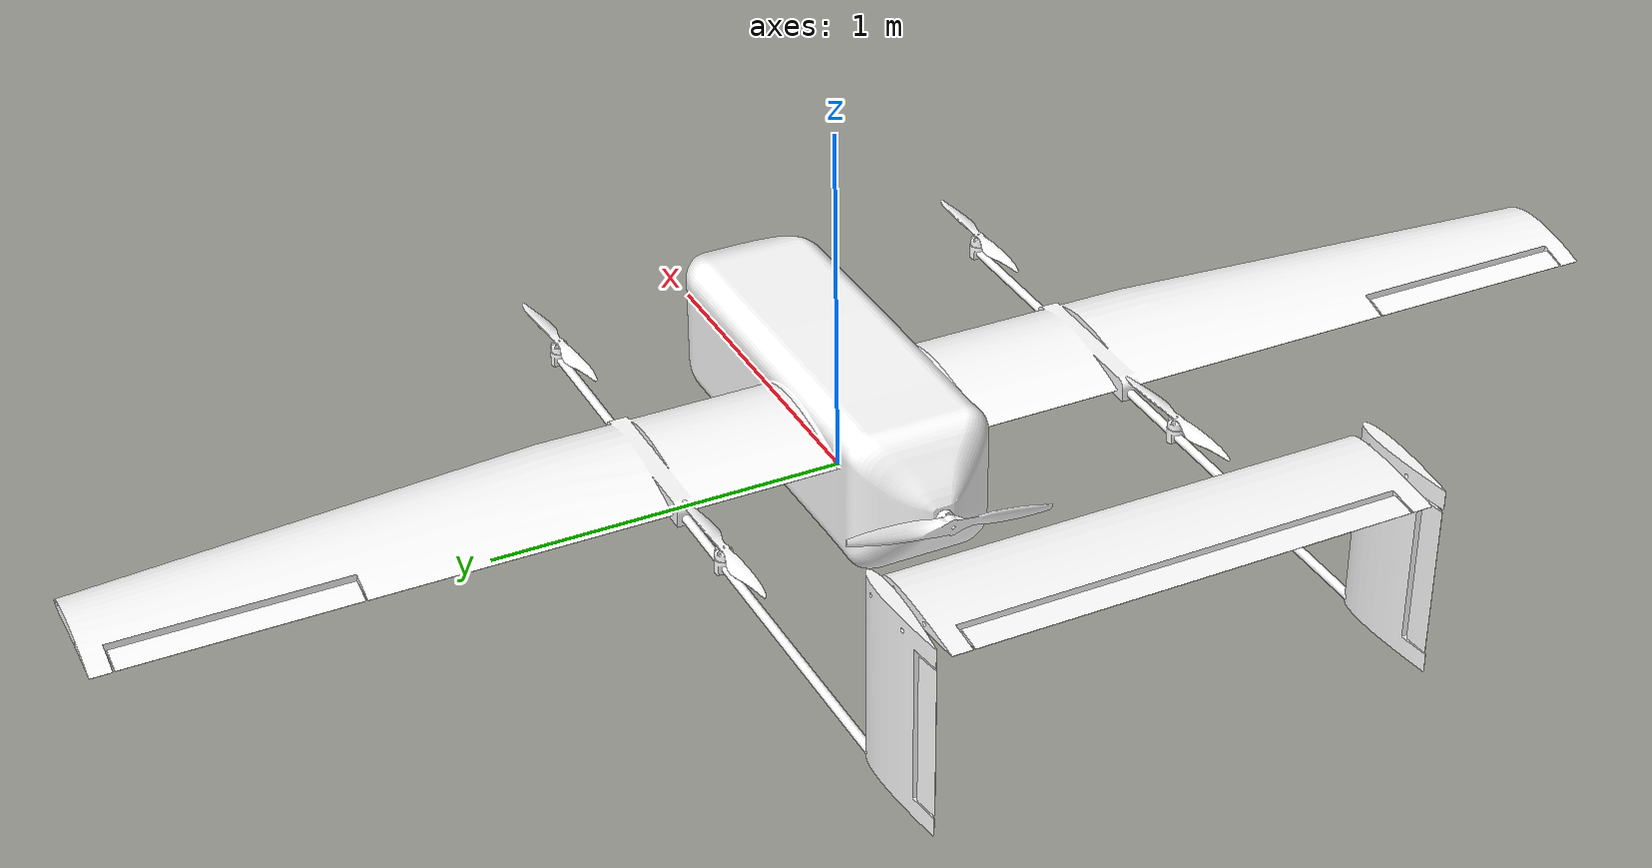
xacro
<?xml version="1.0" encoding="utf-8"?>

<robot
    name="ciconia" xmlns:xacro="http://www.ros.org/wiki/xacro">

  <xacro:include filename="$(find ciconia_gazebo)/urdf/ciconia.gazebo"/>

    <link
    name="body">
    <inertial>
      <origin
        xyz="-0.14 0.0 0.0"
        rpy="0 0 0" />
      <mass
        value="25" />
      <inertia
        ixx="8.638"
        ixy="0.0"
        ixz="1.3"
        iyy="9.014"
        iyz="0"
        izz="16.738" />
    </inertial>
    <visual>
      <origin
        xyz="0 0 0"
        rpy="0 0 0" />
      <geometry>
        <mesh
          filename="package://ciconia_gazebo/meshes/body.STL" />
      </geometry>
      <material
        name="">
        <color
          rgba="1 1 1 1" />
      </material>
    </visual>
    <collision>
      <origin
        xyz="0 0 0"
        rpy="0 0 0" />
      <geometry>
        <mesh
          filename="package://ciconia_gazebo/meshes/body.STL" />
      </geometry>
    </collision>
  </link>

  <link
    name="wing">
    <inertial>
      <origin
        xyz="-0.025 0.00011537 0.30483"
        rpy="0 0 0" />
      <mass
        value="0.0001" />
      <inertia
        ixx="0.0001"
        ixy="0.0001"
        ixz="0.0001"
        iyy="0.0001"
        iyz="-0.0001"
        izz="0.0001" />
    </inertial>
    <visual>
      <origin
        xyz="0 0 0"
        rpy="0 0 0" />
      <geometry>
        <mesh
          filename="package://ciconia_gazebo/meshes/wing.STL" />
      </geometry>
      <material
        name="">
        <color
          rgba="1 1 1 1" />
      </material>
    </visual>
    <collision>
      <origin
        xyz="0 0 0"
        rpy="0 0 0" />
      <geometry>
        <mesh
          filename="package://ciconia_gazebo/meshes/wing.STL" />
      </geometry>
    </collision>
  </link>

  <joint
    name="body2wing"
    type="fixed">
    <origin
      xyz="-0.42417 -2.11 0.30002"
      rpy="1.5708 0.034907 -3.1416" />
    <parent
      link="body" />
    <child
      link="wing" />
    <axis
      xyz="0 0 0" />
  </joint>

  <link
    name="aileronR">
    <inertial>
      <origin
        xyz="-0.025 0.00011537 0.30483"
        rpy="0 0 0" />
      <mass
        value="0.0001" />
      <inertia
        ixx="0.0001"
        ixy="0.0001"
        ixz="0.0001"
        iyy="0.0001"
        iyz="-0.0001"
        izz="0.0001" />
    </inertial>
    <visual>
      <origin
        xyz="0 0 0"
        rpy="0 0 0" />
      <geometry>
        <mesh
          filename="package://ciconia_gazebo/meshes/aileronR.STL" />
      </geometry>
      <material
        name="">
        <color
          rgba="1 1 1 1" />
      </material>
    </visual>
    <collision>
      <origin
        xyz="0 0 0"
        rpy="0 0 0" />
      <geometry>
        <mesh
          filename="package://ciconia_gazebo/meshes/aileronR.STL" />
      </geometry>
    </collision>
  </link>

  <joint
    name="wing2aileronR"
    type="revolute">
    <origin
      xyz="-0.06 0.00986 0.06"
      rpy="0 0 0.020949" />
    <parent
      link="wing" />
    <child
      link="aileronR" />
    <axis
      xyz="0 0 -1" />
    <limit
      lower="-0.5236"
      upper="0.5236"
      effort="100000"
      velocity="100000" />
    <dynamics
      damping="0.001"
      friction="0.001" />
  </joint>

  <link
    name="aileronL">
    <inertial>
      <origin
        xyz="-0.025 0.00011537 0.30483"
        rpy="0 0 0" />
      <mass
        value="0.0001" />
      <inertia
        ixx="0.0001"
        ixy="0.0001"
        ixz="0.0001"
        iyy="0.0001"
        iyz="-0.0001"
        izz="0.0001" />
    </inertial>
    <visual>
      <origin
        xyz="0 0 0"
        rpy="0 0 0" />
      <geometry>
        <mesh
          filename="package://ciconia_gazebo/meshes/aileronL.STL" />
      </geometry>
      <material
        name="">
        <color
          rgba="1 1 1 1" />
      </material>
    </visual>
    <collision>
      <origin
        xyz="0 0 0"
        rpy="0 0 0" />
      <geometry>
        <mesh
          filename="package://ciconia_gazebo/meshes/aileronL.STL" />
      </geometry>
    </collision>
  </link>

  <joint
    name="wing2aileronL"
    type="revolute">
    <origin
      xyz="-0.06 0.00986 3.56"
      rpy="0 0 0.024767" />
    <parent
      link="wing" />
    <child
      link="aileronL" />
    <axis
      xyz="0 0 -1" />
    <limit
      lower="-0.5236"
      upper="0.5236"
      effort="100000"
      velocity="100000" />
    <dynamics
      damping="0.001"
      friction="0.001" />
  </joint>

  <link
    name="frame">
    <inertial>
      <origin
        xyz="-0.025 0.00011537 0.30483"
        rpy="0 0 0" />
      <mass
        value="0.0001" />
      <inertia
        ixx="0.0001"
        ixy="0.0001"
        ixz="0.0001"
        iyy="0.0001"
        iyz="-0.0001"
        izz="0.0001" />
    </inertial>
    <visual>
      <origin
        xyz="0 0 0"
        rpy="0 0 0" />
      <geometry>
        <mesh
          filename="package://ciconia_gazebo/meshes/frame.STL" />
      </geometry>
      <material
        name="">
        <color
          rgba="1 1 1 1" />
      </material>
    </visual>
    <collision>
      <origin
        xyz="0 0 0"
        rpy="0 0 0" />
      <geometry>
        <mesh
          filename="package://ciconia_gazebo/meshes/frame.STL" />
      </geometry>
    </collision>
  </link>

  <joint
    name="wing2frame"
    type="fixed">
    <origin
      xyz="7.576E-05 -0.0021695 1.475"
      rpy="-1.5708 -1.4444 1.6057" />
    <parent
      link="wing" />
    <child
      link="frame" />
    <axis
      xyz="0 0 0" />
  </joint>

  <link
    name="dcmotorFL">
    <inertial>
      <origin
        xyz="-0.025 0.00011537 0.30483"
        rpy="0 0 0" />
      <mass
        value="0.0001" />
      <inertia
        ixx="0.0001"
        ixy="0.0001"
        ixz="0.0001"
        iyy="0.0001"
        iyz="-0.0001"
        izz="0.0001" />
    </inertial>
    <visual>
      <origin
        xyz="0 0 0"
        rpy="0 0 0" />
      <geometry>
        <mesh
          filename="package://ciconia_gazebo/meshes/dcmotorFL.STL" />
      </geometry>
      <material
        name="">
        <color
          rgba="1 1 1 1" />
      </material>
    </visual>
    <collision>
      <origin
        xyz="0 0 0"
        rpy="0 0 0" />
      <geometry>
        <mesh
          filename="package://ciconia_gazebo/meshes/dcmotorFL.STL" />
      </geometry>
    </collision>
  </link>

  <joint
    name="frame2dcmotorFL"
    type="fixed">
    <origin
      xyz="1.2619 -0.14378 0.81198"
      rpy="3.1416 0.14556 3.0152" />
    <parent
      link="frame" />
    <child
      link="dcmotorFL" />
    <axis
      xyz="0 0 0" />
  </joint>

  <link
    name="propFL">
    <inertial>
      <origin
        xyz="-0.025 0.00011537 0.30483"
        rpy="0 0 0" />
      <mass
        value="0.0001" />
      <inertia
        ixx="0.0001"
        ixy="0.0001"
        ixz="0.0001"
        iyy="0.0001"
        iyz="-0.0001"
        izz="0.0001" />
    </inertial>
    <visual>
      <origin
        xyz="0 0 0"
        rpy="0 0 0" />
      <geometry>
        <mesh
          filename="package://ciconia_gazebo/meshes/propFL.STL" />
      </geometry>
      <material
        name="">
        <color
          rgba="1 1 1 1" />
      </material>
    </visual>
    <collision>
      <origin
        xyz="0 0 0"
        rpy="0 0 0" />
      <geometry>
        <mesh
          filename="package://ciconia_gazebo/meshes/propFL.STL" />
      </geometry>
    </collision>
  </link>
  <joint
    name="dcmotorFL2propFL"
    type="continuous">
    <origin
      xyz="0 0.01 0"
      rpy="1.5708 -1.3555 0" />
    <parent
      link="dcmotorFL" />
    <child
      link="propFL" />
    <axis
      xyz="0 0 1" />
    <dynamics
      damping="0.0"
      friction="0.0" />
  </joint>
  <link
    name="dcmotorFR">
    <inertial>
      <origin
        xyz="-0.025 0.00011537 0.30483"
        rpy="0 0 0" />
      <mass
        value="0.0001" />
      <inertia
        ixx="0.0001"
        ixy="0.0001"
        ixz="0.0001"
        iyy="0.0001"
        iyz="-0.0001"
        izz="0.0001" />
    </inertial>
    <visual>
      <origin
        xyz="0 0 0"
        rpy="0 0 0" />
      <geometry>
        <mesh
          filename="package://ciconia_gazebo/meshes/dcmotorFR.STL" />
      </geometry>
      <material
        name="">
        <color
          rgba="1 1 1 1" />
      </material>
    </visual>
    <collision>
      <origin
        xyz="0 0 0"
        rpy="0 0 0" />
      <geometry>
        <mesh
          filename="package://ciconia_gazebo/meshes/dcmotorFR.STL" />
      </geometry>
    </collision>
  </link>
  <joint
    name="frame2dcmotorFR"
    type="fixed">
    <origin
      xyz="0.0020668 0.016269 0.81198"
      rpy="3.1416 1.501 3.0152" />
    <parent
      link="frame" />
    <child
      link="dcmotorFR" />
    <axis
      xyz="0 0 0" />
  </joint>
  <link
    name="propFR">
    <inertial>
      <origin
        xyz="-0.025 0.00011537 0.30483"
        rpy="0 0 0" />
      <mass
        value="0.0001" />
      <inertia
        ixx="0.0001"
        ixy="0.0001"
        ixz="0.0001"
        iyy="0.0001"
        iyz="-0.0001"
        izz="0.0001" />
    </inertial>
    <visual>
      <origin
        xyz="0 0 0"
        rpy="0 0 0" />
      <geometry>
        <mesh
          filename="package://ciconia_gazebo/meshes/propFR.STL" />
      </geometry>
      <material
        name="">
        <color
          rgba="1 1 1 1" />
      </material>
    </visual>
    <collision>
      <origin
        xyz="0 0 0"
        rpy="0 0 0" />
      <geometry>
        <mesh
          filename="package://ciconia_gazebo/meshes/propFR.STL" />
      </geometry>
    </collision>
  </link>
  <joint
    name="dcmotorFR2propFR"
    type="continuous">
    <origin
      xyz="0 0.01 0"
      rpy="1.5708 -0.068476 0" />
    <parent
      link="dcmotorFR" />
    <child
      link="propFR" />
    <axis
      xyz="0 0 1" />
    <dynamics
      damping="0.0"
      friction="0.0" />
  </joint>
  <link
    name="dcmotorBL">
    <inertial>
      <origin
        xyz="-0.025 0.00011537 0.30483"
        rpy="0 0 0" />
      <mass
        value="0.0001" />
      <inertia
        ixx="0.0001"
        ixy="0.0001"
        ixz="0.0001"
        iyy="0.0001"
        iyz="-0.0001"
        izz="0.0001" />
    </inertial>
    <visual>
      <origin
        xyz="0 0 0"
        rpy="0 0 0" />
      <geometry>
        <mesh
          filename="package://ciconia_gazebo/meshes/dcmotorBL.STL" />
      </geometry>
      <material
        name="">
        <color
          rgba="1 1 1 1" />
      </material>
    </visual>
    <collision>
      <origin
        xyz="0 0 0"
        rpy="0 0 0" />
      <geometry>
        <mesh
          filename="package://ciconia_gazebo/meshes/dcmotorBL.STL" />
      </geometry>
    </collision>
  </link>
  <joint
    name="frame2dcmotorBL"
    type="fixed">
    <origin
      xyz="1.2619 -0.14378 -0.24802"
      rpy="3.1416 1.501 3.0152" />
    <parent
      link="frame" />
    <child
      link="dcmotorBL" />
    <axis
      xyz="0 0 0" />
  </joint>
  <link
    name="propBL">
    <inertial>
      <origin
        xyz="-0.025 0.00011537 0.30483"
        rpy="0 0 0" />
      <mass
        value="0.0001" />
      <inertia
        ixx="0.0001"
        ixy="0.0001"
        ixz="0.0001"
        iyy="0.0001"
        iyz="-0.0001"
        izz="0.0001" />
    </inertial>
    <visual>
      <origin
        xyz="0 0 0"
        rpy="0 0 0" />
      <geometry>
        <mesh
          filename="package://ciconia_gazebo/meshes/propBL.STL" />
      </geometry>
      <material
        name="">
        <color
          rgba="1 1 1 1" />
      </material>
    </visual>
    <collision>
      <origin
        xyz="0 0 0"
        rpy="0 0 0" />
      <geometry>
        <mesh
          filename="package://ciconia_gazebo/meshes/propBL.STL" />
      </geometry>
    </collision>
  </link>
  <joint
    name="dcmotorBL2propBL"
    type="continuous">
    <origin
      xyz="0 0.01 0"
      rpy="1.5708 -0.042043 0" />
    <parent
      link="dcmotorBL" />
    <child
      link="propBL" />
    <axis
      xyz="0 0 1" />
    <dynamics
      damping="0.0"
      friction="0.0" />
  </joint>
  <link
    name="dcmotorBR">
    <inertial>
      <origin
        xyz="-0.025 0.00011537 0.30483"
        rpy="0 0 0" />
      <mass
        value="0.0001" />
      <inertia
        ixx="0.0001"
        ixy="0.0001"
        ixz="0.0001"
        iyy="0.0001"
        iyz="-0.0001"
        izz="0.0001" />
    </inertial>
    <visual>
      <origin
        xyz="0 0 0"
        rpy="0 0 0" />
      <geometry>
        <mesh
          filename="package://ciconia_gazebo/meshes/dcmotorBR.STL" />
      </geometry>
      <material
        name="">
        <color
          rgba="1 1 1 1" />
      </material>
    </visual>
    <collision>
      <origin
        xyz="0 0 0"
        rpy="0 0 0" />
      <geometry>
        <mesh
          filename="package://ciconia_gazebo/meshes/dcmotorBR.STL" />
      </geometry>
    </collision>
  </link>
  <joint
    name="frame2dcmotorBR"
    type="fixed">
    <origin
      xyz="0.0020668 0.016269 -0.24802"
      rpy="3.1416 1.501 3.0152" />
    <parent
      link="frame" />
    <child
      link="dcmotorBR" />
    <axis
      xyz="0 0 0" />
  </joint>
  <link
    name="propBR">
    <inertial>
      <origin
        xyz="-0.025 0.00011537 0.30483"
        rpy="0 0 0" />
      <mass
        value="0.0001" />
      <inertia
        ixx="0.0001"
        ixy="0.0001"
        ixz="0.0001"
        iyy="0.0001"
        iyz="-0.0001"
        izz="0.0001" />
    </inertial>
    <visual>
      <origin
        xyz="0 0 0"
        rpy="0 0 0" />
      <geometry>
        <mesh
          filename="package://ciconia_gazebo/meshes/propBR.STL" />
      </geometry>
      <material
        name="">
        <color
          rgba="1 1 1 1" />
      </material>
    </visual>
    <collision>
      <origin
        xyz="0 0 0"
        rpy="0 0 0" />
      <geometry>
        <mesh
          filename="package://ciconia_gazebo/meshes/propBR.STL" />
      </geometry>
    </collision>
  </link>
  <joint
    name="dcmotorBR2propBR"
    type="continuous">
    <origin
      xyz="0 0.01 0"
      rpy="1.5708 0 0" />
    <parent
      link="dcmotorBR" />
    <child
      link="propBR" />
    <axis
      xyz="0 0 1" />
    <dynamics
      damping="0.0"
      friction="0.0" />
  </joint>
  <link
    name="verticaltail">
    <inertial>
      <origin
        xyz="-0.025 0.00011537 0.30483"
        rpy="0 0 0" />
      <mass
        value="0.0001" />
      <inertia
        ixx="0.0001"
        ixy="0.0001"
        ixz="0.0001"
        iyy="0.0001"
        iyz="-0.0001"
        izz="0.0001" />
    </inertial>
    <visual>
      <origin
        xyz="0 0 0"
        rpy="0 0 0" />
      <geometry>
        <mesh
          filename="package://ciconia_gazebo/meshes/verticaltail.STL" />
      </geometry>
      <material
        name="">
        <color
          rgba="1 1 1 1" />
      </material>
    </visual>
    <collision>
      <origin
        xyz="0 0 0"
        rpy="0 0 0" />
      <geometry>
        <mesh
          filename="package://ciconia_gazebo/meshes/verticaltail.STL" />
      </geometry>
    </collision>
  </link>
  <joint
    name="frame2verticaltail"
    type="fixed">
    <origin
      xyz="0.000999377403465118 -0.0159687583989936 -1.17551568300135"
      rpy="1.57065167907709 1.57079631189374 3.01523037077541" />
    <parent
      link="frame" />
    <child
      link="verticaltail" />
    <axis
      xyz="0 0 0" />
  </joint>
  <link
    name="rudderL">
    <inertial>
      <origin
        xyz="-0.025 0.00011537 0.30483"
        rpy="0 0 0" />
      <mass
        value="0.0001" />
      <inertia
        ixx="0.0001"
        ixy="0.0001"
        ixz="0.0001"
        iyy="0.0001"
        iyz="-0.0001"
        izz="0.0001" />
    </inertial>
    <visual>
      <origin
        xyz="0 0 0"
        rpy="0 0 0" />
      <geometry>
        <mesh
          filename="package://ciconia_gazebo/meshes/rudderL.STL" />
      </geometry>
      <material
        name="">
        <color
          rgba="1 1 1 1" />
      </material>
    </visual>
    <collision>
      <origin
        xyz="0 0 0"
        rpy="0 0 0" />
      <geometry>
        <mesh
          filename="package://ciconia_gazebo/meshes/rudderL.STL" />
      </geometry>
    </collision>
  </link>
  <joint
    name="verticaltail2rudderL"
    type="revolute">
    <origin
      xyz="0.093825 -1.267 0.055"
      rpy="3.1416 0 0.021456" />
    <parent
      link="verticaltail" />
    <child
      link="rudderL" />
    <axis
      xyz="0 0 -1" />
    <limit
      lower="-0.5236"
      upper="0.5236"
      effort="100000"
      velocity="100000" />
    <dynamics
      damping="0.001"
      friction="0.001" />
  </joint>
  <link
    name="rudderR">
    <inertial>
      <origin
        xyz="-0.025 0.00011537 0.30483"
        rpy="0 0 0" />
      <mass
        value="0.0001" />
      <inertia
        ixx="0.0001"
        ixy="0.0001"
        ixz="0.0001"
        iyy="0.0001"
        iyz="-0.0001"
        izz="0.0001" />
    </inertial>
    <visual>
      <origin
        xyz="0 0 0"
        rpy="0 0 0" />
      <geometry>
        <mesh
          filename="package://ciconia_gazebo/meshes/rudderR.STL" />
      </geometry>
      <material
        name="">
        <color
          rgba="1 1 1 1" />
      </material>
    </visual>
    <collision>
      <origin
        xyz="0 0 0"
        rpy="0 0 0" />
      <geometry>
        <mesh
          filename="package://ciconia_gazebo/meshes/rudderR.STL" />
      </geometry>
    </collision>
  </link>
  <joint
    name="verticaltail2rudderR"
    type="revolute">
    <origin
      xyz="0.093825 0.0030039 0.055"
      rpy="3.1416 0 -0.048369" />
    <parent
      link="verticaltail" />
    <child
      link="rudderR" />
    <axis
      xyz="0 0 -1" />
    <limit
      lower="-0.5236"
      upper="0.5236"
      effort="100000"
      velocity="100000" />
    <dynamics
      damping="0.001"
      friction="0.001" />
  </joint>
  <link
    name="horizontalTail">
    <inertial>
      <origin
        xyz="-0.025 0.00011537 0.30483"
        rpy="0 0 0" />
      <mass
        value="0.0001" />
      <inertia
        ixx="0.0001"
        ixy="0.0001"
        ixz="0.0001"
        iyy="0.0001"
        iyz="-0.0001"
        izz="0.0001" />
    </inertial>
    <visual>
      <origin
        xyz="0 0 0"
        rpy="0 0 0" />
      <geometry>
        <mesh
          filename="package://ciconia_gazebo/meshes/horizontalTail.STL" />
      </geometry>
      <material
        name="">
        <color
          rgba="1 1 1 1" />
      </material>
    </visual>
    <collision>
      <origin
        xyz="0 0 0"
        rpy="0 0 0" />
      <geometry>
        <mesh
          filename="package://ciconia_gazebo/meshes/horizontalTail.STL" />
      </geometry>
    </collision>
  </link>
  <joint
    name="verticaltail2horizontalTail"
    type="fixed">
    <origin
      xyz="0 -0.03 0.467"
      rpy="1.5708 0 0" />
    <parent
      link="verticaltail" />
    <child
      link="horizontalTail" />
    <axis
      xyz="0 0 0" />
  </joint>
  <link
    name="elevator">
    <inertial>
      <origin
        xyz="-0.025 0.00011537 0.30483"
        rpy="0 0 0" />
      <mass
        value="0.0001" />
      <inertia
        ixx="0.0001"
        ixy="0.0001"
        ixz="0.0001"
        iyy="0.0001"
        iyz="-0.0001"
        izz="0.0001" />
    </inertial>
    <visual>
      <origin
        xyz="0 0 0"
        rpy="0 0 0" />
      <geometry>
        <mesh
          filename="package://ciconia_gazebo/meshes/elevator.STL" />
      </geometry>
      <material
        name="">
        <color
          rgba="1 1 1 1" />
      </material>
    </visual>
    <collision>
      <origin
        xyz="0 0 0"
        rpy="0 0 0" />
      <geometry>
        <mesh
          filename="package://ciconia_gazebo/meshes/elevator.STL" />
      </geometry>
    </collision>
  </link>
  <joint
    name="horizontalTail2elevator"
    type="revolute">
    <origin
      xyz="0.093825 0.0030039 0.055"
      rpy="0 0 0" />
    <parent
      link="horizontalTail" />
    <child
      link="elevator" />
    <axis
      xyz="0 0 -1" />
    <limit
      lower="-0.5236"
      upper="0.5236"
      effort="100000"
      velocity="100000" />
    <dynamics
      damping="0.001"
      friction="0.001" />
  </joint>
  <link
    name="dc_motor_fixed_wing">
    <inertial>
      <origin
        xyz="-0.025 0.00011537 0.30483"
        rpy="0 0 0" />
      <mass
        value="0.0001" />
      <inertia
        ixx="0.0001"
        ixy="0.0001"
        ixz="0.0001"
        iyy="0.0001"
        iyz="-0.0001"
        izz="0.0001" />
    </inertial>
    <visual>
      <origin
        xyz="0 0 0"
        rpy="0 0 0" />
      <geometry>
        <mesh
          filename="package://ciconia_gazebo/meshes/dc_motor_fixed_wing.STL" />
      </geometry>
      <material
        name="">
        <color
          rgba="1 1 1 1" />
      </material>
    </visual>
    <collision>
      <origin
        xyz="0 0 0"
        rpy="0 0 0" />
      <geometry>
        <mesh
          filename="package://ciconia_gazebo/meshes/dc_motor_fixed_wing.STL" />
      </geometry>
    </collision>
  </link>
  <joint
    name="body2motor"
    type="fixed">
    <origin
      xyz="-0.5958 0 0.2"
      rpy="0 -1.5702 1.5708" />
    <parent
      link="body" />
    <child
      link="dc_motor_fixed_wing" />
    <axis
      xyz="0 0 0" />
  </joint>
  <link
    name="fixed_wing_propeller">
    <inertial>
      <origin
        xyz="-0.025 0.00011537 0.30483"
        rpy="0 0 0" />
      <mass
        value="0.0001" />
      <inertia
        ixx="0.0001"
        ixy="0.0"
        ixz="0.0"
        iyy="0.0"
        iyz="0.0001"
        izz="0.0001" />
    </inertial>
    <visual>
      <origin
        xyz="0 0 0"
        rpy="0 0 0" />
      <geometry>
        <mesh
          filename="package://ciconia_gazebo/meshes/fixed_wing_propeller.STL" />
      </geometry>
      <material
        name="">
        <color
          rgba="1 1 1 1" />
      </material>
    </visual>
    <collision>
      <origin
        xyz="0 0 0"
        rpy="0 0 0" />
      <geometry>
        <mesh
          filename="package://ciconia_gazebo/meshes/fixed_wing_propeller.STL" />
      </geometry>
    </collision>
  </link>
  <joint
    name="motor2fwprop"
    type="continuous">
    <origin
      xyz="0 0.01 0"
      rpy="-3.1416 0.12532 -3.1416" />
    <parent
      link="dc_motor_fixed_wing" />
    <child
      link="fixed_wing_propeller" />
    <axis
      xyz="0 1 0" />
    <dynamics damping="0.0" friction="0.0"/>
  </joint>

  <link name="hokuyo_link">
    <collision>
      <origin xyz="0 0 0" rpy="0 1.570796 0"/>
      <geometry>
        <box size="0.0 0.0 0.0"/>
      </geometry>
    </collision>

    <visual>
      <origin xyz="0 0 0" rpy="0 1.570796 0"/>
      <geometry>
        <box size="0.015 0.015 0.015"/>
      </geometry>
    </visual>

    <inertial>
      <mass value="1e-5" />
      <origin xyz="0 0 0" rpy="0 0 0"/>
      <inertia ixx="1e-6" ixy="0" ixz="0" iyy="1e-6" iyz="0" izz="1e-6" />
    </inertial>
  </link>

  <joint name="hokuyo_joint" type="fixed">
    <axis xyz="0 1 0" />
    <origin xyz="0 0 0" rpy="0 1.570796 0"/>
    <parent link="body"/>
    <child link="hokuyo_link"/>
  </joint>

</robot>
